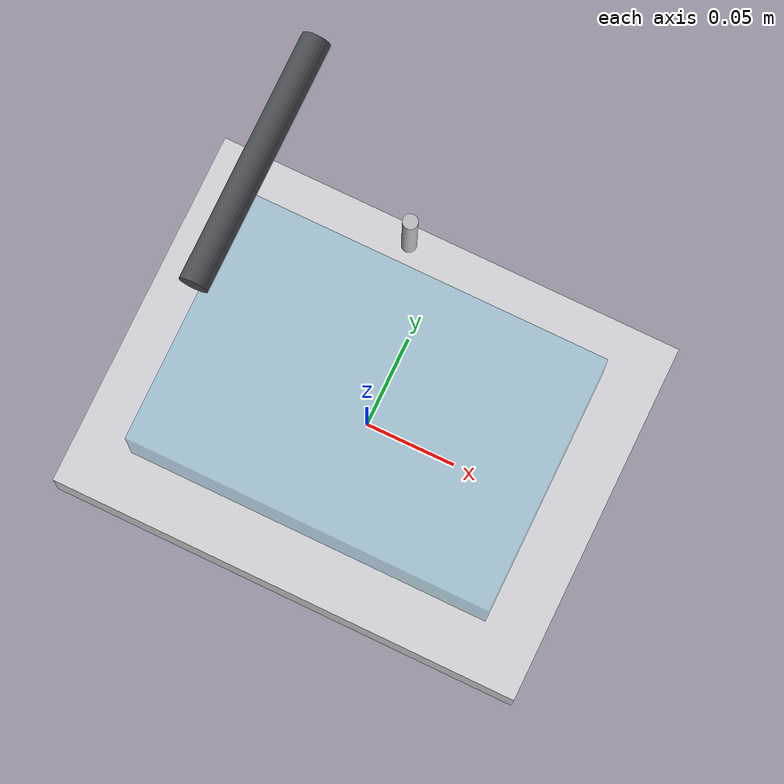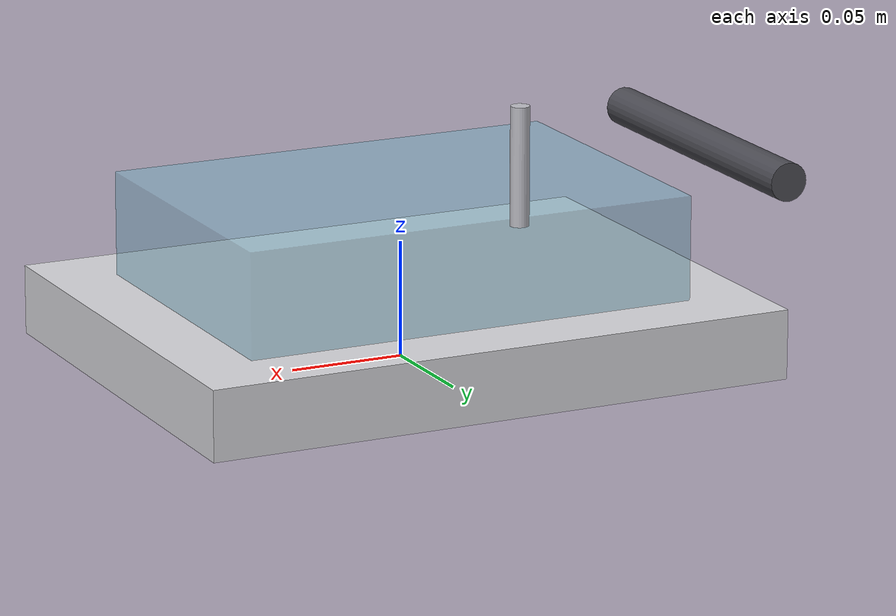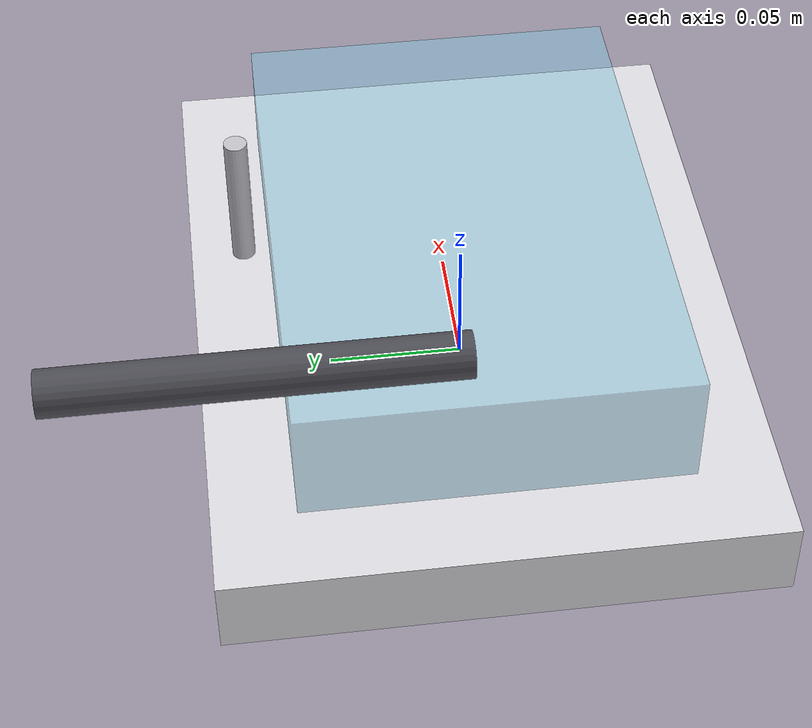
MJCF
<?xml version="1.0" encoding="utf-8"?>
<mujoco model="real_lab_wellington_university_vucel">
  <compiler angle="radian" autolimits="true"/>
  <default>
    <default class="body"><geom contype="1" conaffinity="1"/></default>
  </default>
  <worldbody>
    <body name="base">
      <geom type="box" size="0.13 0.1 0.015" pos="0 0 0.015" rgba="0.85 0.85 0.87 1" class="body"/>
      <geom type="box" size="0.1 0.07 0.03" pos="0 0 0.045" rgba="0.5 0.75 0.85 0.5" class="body"/>
      <geom type="cylinder" size="0.008 0.07" pos="-0.1 0.08 0.1" rgba="0.3 0.3 0.33 1" class="body" quat="0.707 0.707 0 0"/>
      <body name="tap_lever" pos="-0.03 0.08 0.1">
        <joint name="tap_lever_joint" type="hinge" axis="0 1 0" range="-0.6 0.6" damping="0.3" frictionloss="0.1"/>
  <geom type="cylinder" size="0.004 0.025" pos="0.015 0 0" rgba="0.75 0.75 0.78 1" class="body"/>
      </body>
    </body>
  </worldbody>
</mujoco>
